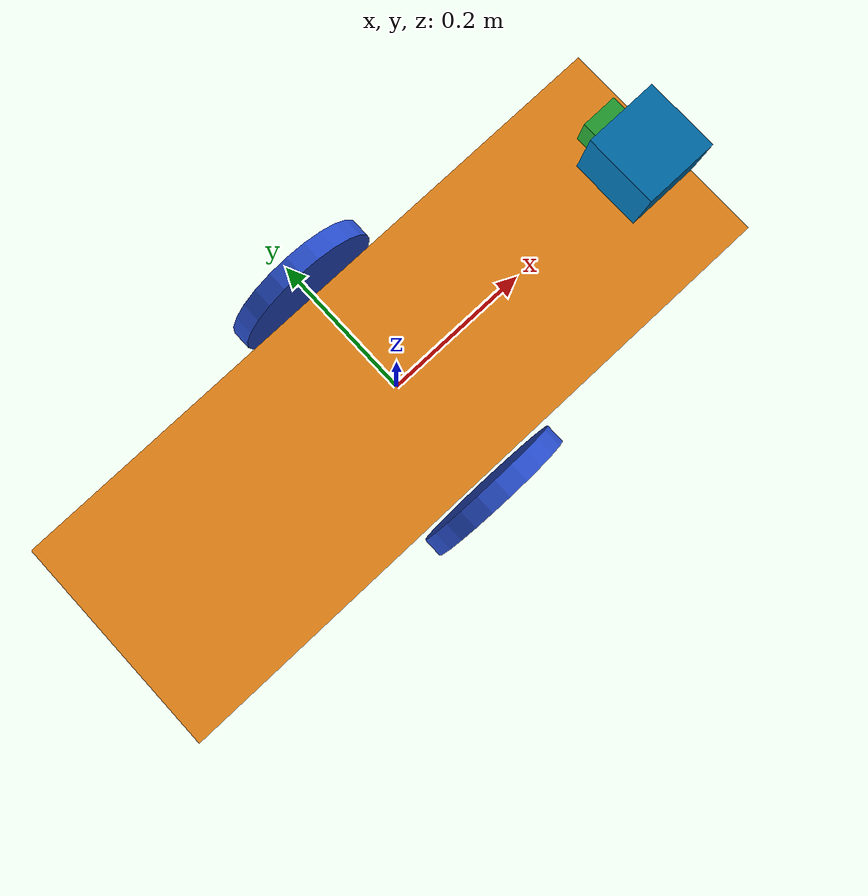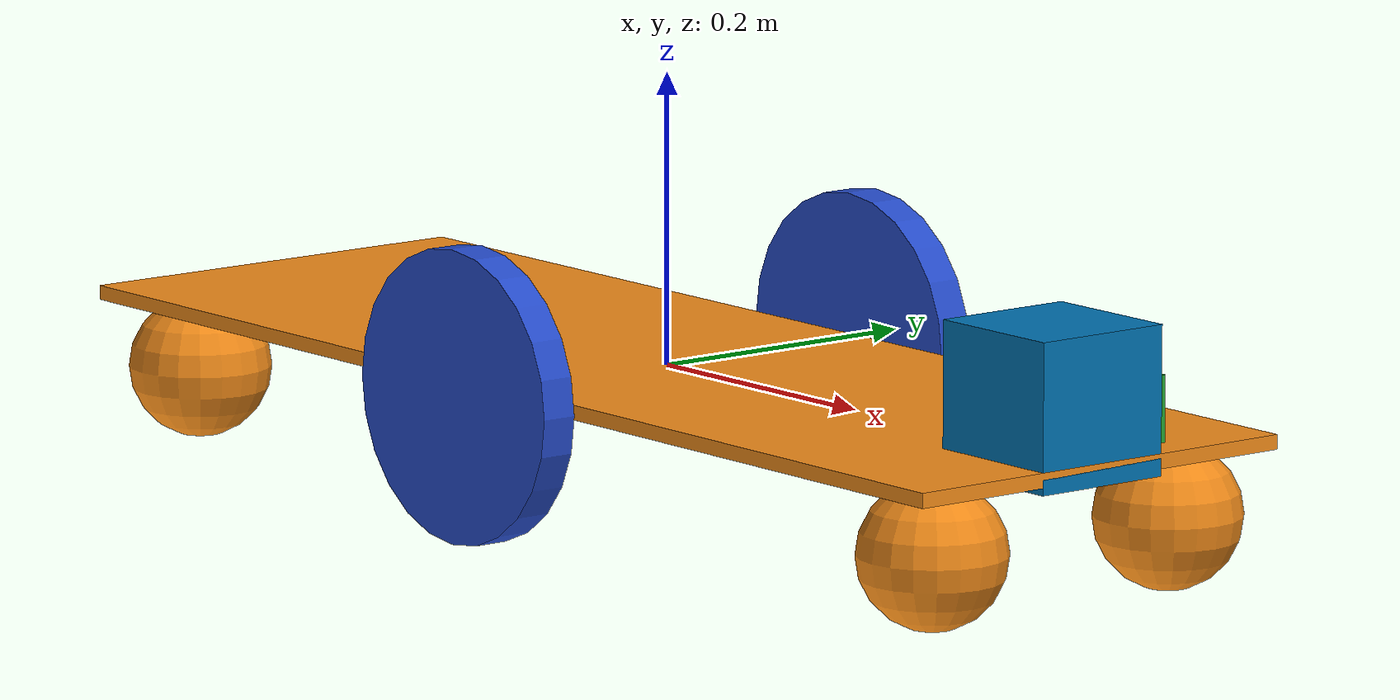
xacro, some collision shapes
<?xml version='1.0'?>

<robot name="myrobot" xmlns:xacro="http://www.ros.org/wiki/xacro">

<xacro:property name="cameraSize" value="0.05"/>
<xacro:property name="cameraMass" value="0.1"/>

<xacro:include filename="$(find njcrobot_description)/urdf/nmyrobot.gazebo" />
<xacro:include filename="$(find njcrobot_description)/urdf/materials.xacro" />

<link name='chassis'>
   <pose>0 0 1 0 0 0</pose>

   <inertial>
     <mass value="15.0"/>
     <origin xyz="0.0 0 0" rpy=" 0 0 0"/>
     <inertia ixx="1.012625" ixy="0" ixz="0" iyy="1.012625" iyz="0" izz="1.125"/>
   </inertial>

   <collision name='collision'>
     <geometry>
       <box size=".9 .3 .01"/>
     </geometry>
   </collision>

   <visual name='chassis_visual'>
     <origin xyz="0 0 0" rpy=" 0 0 0"/>
     <geometry>
       <box size=".9 .3 .01"/>
     </geometry>
   </visual>

   <visual name='caster_left_frontvisual'>
     <origin xyz="0.4 0.10 -0.05" rpy=" 0 0 0"/>
     <geometry>
       <sphere radius="0.05"/>
     </geometry>
   </visual>

   <collision name='caster_left_frontcollision'>
     <origin xyz="0.4 0.10 -0.05" rpy=" 0 0 0"/>
     <geometry>
       <sphere radius="0.05"/>
     </geometry>
     <surface>
       <friction>
         <ode>
           <mu>0</mu>
           <mu2>0</mu2>
           <slip1>0.1</slip1>
           <slip2>0.1</slip2>
         </ode>
       </friction>
     </surface>
   </collision>

   <visual name='caster_right_frontvisual'>
     <origin xyz="0.4 -0.10 -0.05" rpy=" 0 0 0"/>
     <geometry>
       <sphere radius="0.05"/>
     </geometry>
   </visual>

   <collision name='caster_right_frontcollision'>
     <origin xyz="0.4 -0.10 -0.05" rpy=" 0 0 0"/>
     <geometry>
       <sphere radius="0.05"/>
     </geometry>
     <surface>
       <friction>
         <ode>
           <mu>0</mu>
           <mu2>0</mu2>
           <slip1>0.1</slip1>
           <slip2>0.1</slip2>
         </ode>
       </friction>
     </surface>
   </collision>

   <visual name='caster_left_backvisual'>
     <origin xyz="-0.4 0.10 -0.05" rpy=" 0 0 0"/>
     <geometry>
       <sphere radius="0.05"/>
     </geometry>
   </visual>

   <collision name='caster_left_backcollision'>
     <origin xyz="-0.4 0.10 -0.05" rpy=" 0 0 0"/>
     <geometry>
       <sphere radius="0.05"/>
     </geometry>
     <surface>
       <friction>
         <ode>
           <mu>0</mu>
           <mu2>0</mu2>
           <slip1>0.1</slip1>
           <slip2>0.1</slip2>
         </ode>
       </friction>
     </surface>
   </collision>

   <visual name='caster_right_backvisual'>
     <origin xyz="-0.4 -0.10 -0.05" rpy=" 0 0 0"/>
     <geometry>
       <sphere radius="0.05"/>
     </geometry>
   </visual>

   <collision name='caster_right_backcollision'>
     <origin xyz="-0.4 -0.10 -0.05" rpy=" 0 0 0"/>
     <geometry>
       <sphere radius="0.05"/>
     </geometry>
     <surface>
       <friction>
         <ode>
           <mu>0</mu>
           <mu2>0</mu2>
           <slip1>0.1</slip1>
           <slip2>0.1</slip2>
         </ode>
       </friction>
     </surface>
   </collision>

</link>

<link name="left_wheel">
  <collision name="collision">
    <origin xyz="0 0 0" rpy="0 1.5707 1.5707"/>
    <geometry>
      <cylinder radius="0.1" length="0.025"/>
    </geometry>
  </collision>

   <visual name="left_wheel_visual">
     <origin xyz="0 0 0" rpy="0 1.5707 1.5707"/>
     <geometry>
       <cylinder radius="0.1" length="0.025"/>
     </geometry>
   </visual>

   <inertial>
     <origin xyz="0 0 0" rpy="0 1.5707 1.5707"/>
     <mass value="5"/>
     <inertia ixx="0.02525" ixy="0.0" ixz="0.0" iyy=".02525" iyz="0.0" izz="0.05"/>
   </inertial>

</link>

<link name="right_wheel">
   <visual name="right_wheel_visual">
     <origin xyz="0 0 0" rpy="0 1.5707 1.5707"/>
     <geometry>
       <cylinder radius="0.1" length="0.025"/>
     </geometry>
   </visual>

<collision name="collision">
  <origin xyz="0 0 0" rpy="0 1.5707 1.5707"/>
  <geometry>
    <cylinder radius="0.1" length="0.025"/>
  </geometry>
</collision>

<inertial>
  <origin xyz="0 0 0" rpy="0 1.5707 1.5707"/>
  <mass value="5"/>
  <inertia ixx=".02525" ixy="0.0" ixz="0.0" iyy=".02525" iyz="0.0" izz="0.05"/>
</inertial>

</link>

 <joint type="continuous" name="left_wheel_hinge">
   <origin xyz="-0.0 0.17 0" rpy="0 0 0"/>
   <child link="left_wheel"/>
   <parent link="chassis"/>
   <axis xyz="0 1 0" rpy="0 0 0"/>
   <limit effort="10000" velocity="1000"/>
   <joint_properties damping="0.5" friction="0.5"/>
 </joint>

 <joint type="continuous" name="right_wheel_hinge">
   <origin xyz="0.0 -0.17 0" rpy="0 0 0"/>
   <child link="right_wheel"/>
   <parent link="chassis"/>
   <axis xyz="0 1 0" rpy="0 0 0"/>
   <limit effort="10000" velocity="1000"/>
   <joint_properties damping="0.5" friction="0.5"/>
 </joint>

  <link name="camera">
    <collision>
      <origin xyz="0 0 0" rpy="0 0 0"/>
      <geometry>
        <box size="${cameraSize} ${cameraSize} ${cameraSize}"/>
      </geometry>
    </collision>

    <visual>
      <origin xyz="0 0 0" rpy="0 0 0"/>
      <geometry>
        <box size="${cameraSize} ${cameraSize} ${cameraSize}"/>
      </geometry>
      <material name="green"/>
    </visual>

    <inertial>
      <mass value="${cameraMass}" />
      <origin xyz="0 0 0" rpy="0 0 0"/>
      <box_inertia m="${cameraMass}" x="${cameraSize}" y="${cameraSize}" z="${cameraSize}" />
      <inertia ixx="1e-6" ixy="0" ixz="0" iyy="1e-6" iyz="0" izz="1e-6" />
    </inertial>
  </link>

  <joint name="camera_joint" type="fixed">
    <axis xyz="0 1 0" />
    <origin xyz="0.40 0.050 0.025" rpy="0 0 0"/>
    <parent link="chassis"/>
    <child link="camera"/>
  </joint>

  <joint name="hokuyo_joint" type="fixed">
    <axis xyz="0 1 0" />
    <origin xyz="0.40 0 0.040" rpy="0 0 0"/>
    <parent link="chassis"/>
    <child link="hokuyo"/>
  </joint>

  <!-- Hokuyo Laser -->
  <link name="hokuyo">
    <collision>
      <origin xyz="0 0 0" rpy="0 0 0"/>
      <geometry>
    <box size="0.1 0.1 0.1"/>
      </geometry>
    </collision>

    <visual>
      <origin xyz="0 0 0" rpy="0 0 0"/>
      <geometry>
        <mesh filename="package://njcrobot_description/meshes/hokuyo.dae"/>
      </geometry>
    </visual>

    <inertial>
      <mass value="1e-5" />
      <origin xyz="0 0 0" rpy="0 0 0"/>
      <inertia ixx="1e-6" ixy="0" ixz="0" iyy="1e-6" iyz="0" izz="1e-6" />
    </inertial>
  </link>

</robot>
